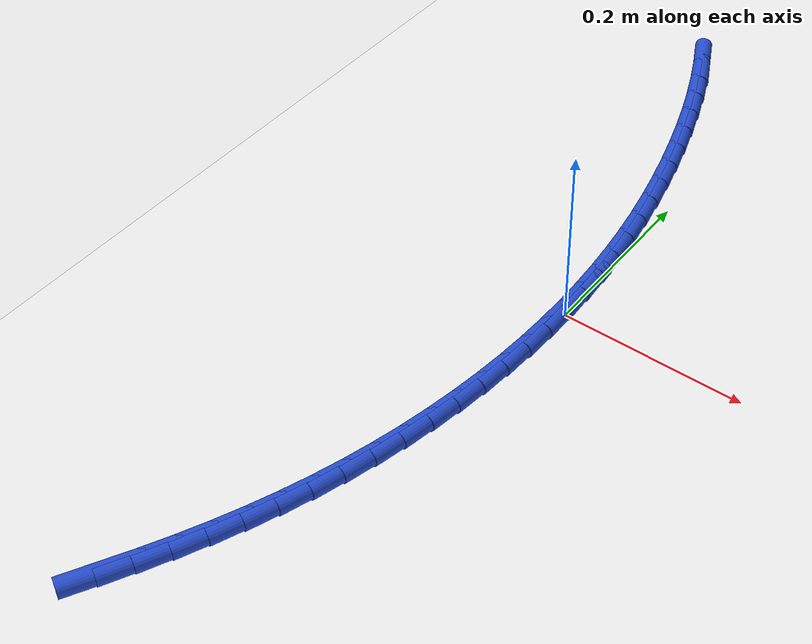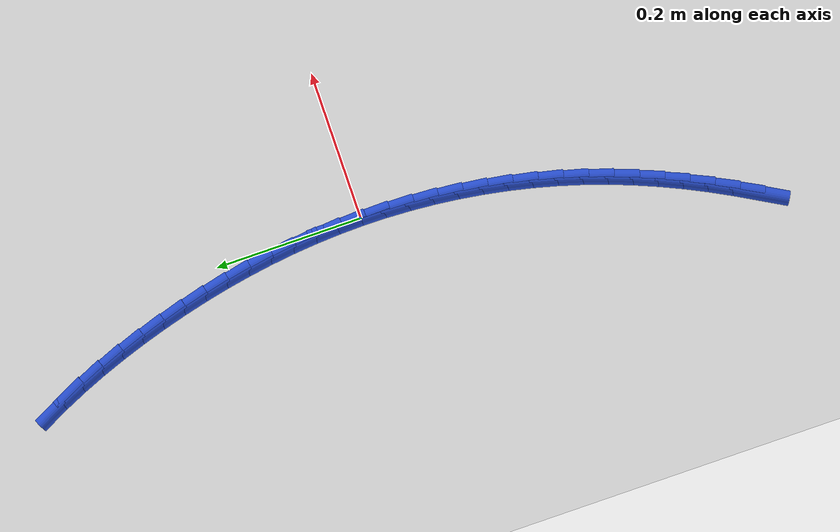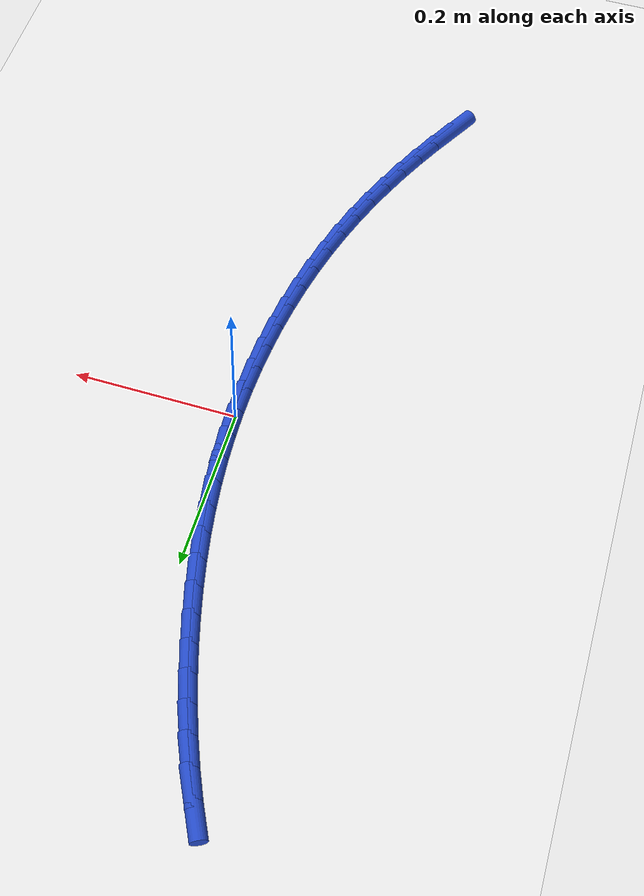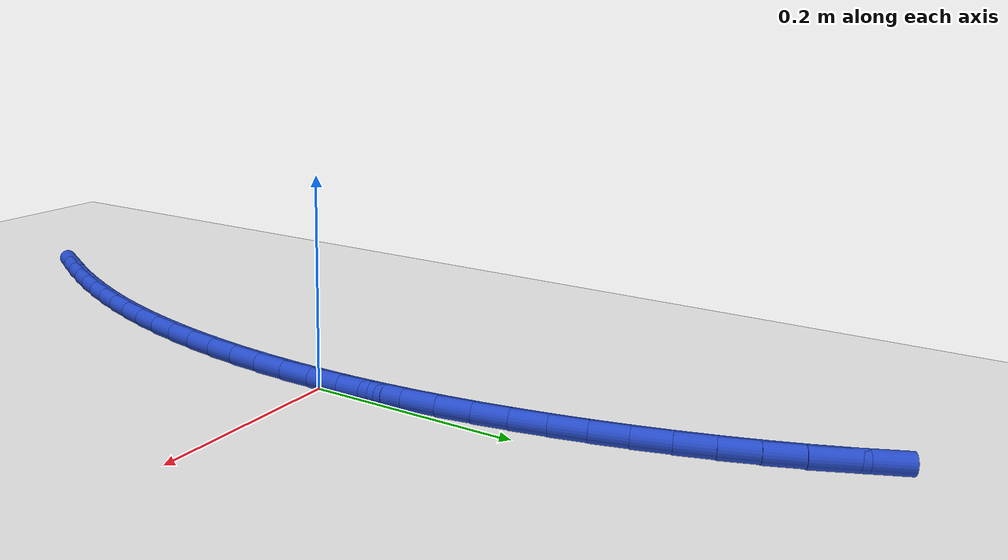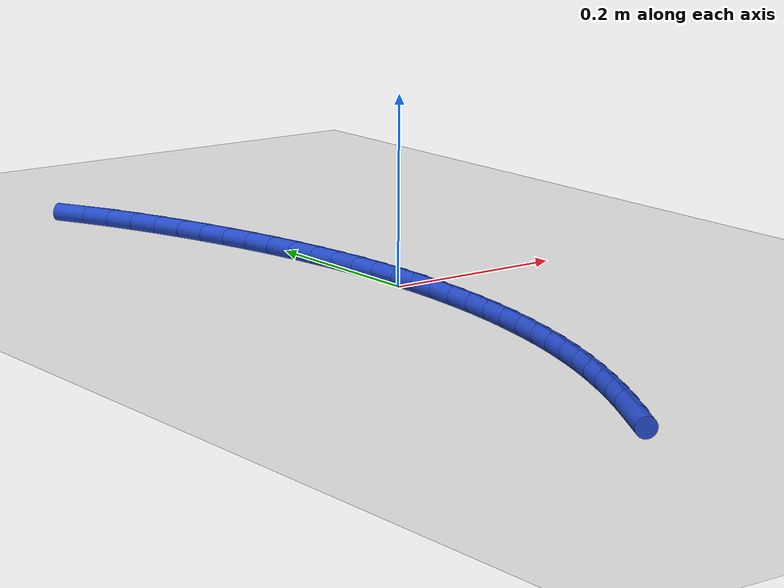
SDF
<sdf version="1.6">
 <world name="default">
  <model name="ground_plane">
   <static>1</static>
   <link name="link">
    <collision name="collision">
     <geometry><plane><normal>0 0 1</normal><size>100 100</size></plane></geometry>
     <surface><friction><ode><mu>100</mu><mu2>50</mu2></ode></friction></surface>
    </collision>
    <visual name="visual">
     <cast_shadows>0</cast_shadows>
     <geometry><plane><normal>0 0 1</normal><size>100 100</size></plane></geometry>
     <material>
      <script><uri>file://media/materials/scripts/gazebo.material</uri><name>Gazebo/WhiteGlow</name></script>
     </material>
    </visual>
   </link>
  </model>
  <model name="line">
   <link name="link_0">
    <pose>-9.540979117872439e-18 2.7755575615628914e-17 0.01 0 1.57 -1.5479299830757318</pose>
    <collision name="collision">
     <geometry><cylinder><radius>0.01</radius><length>0.08</length></cylinder></geometry>
    </collision>
    <visual name="visual">
     <material>
      <script><name>Gazebo/Blue</name><uri>file://media/materials/scripts/gazebo.material</uri></script>
     </material>
     <geometry><cylinder><radius>0.01</radius><length>0.08</length></cylinder></geometry>
    </visual>
   </link>
   <link name="link_1">
    <pose>-0.0007515272353551269 0.03286035828101572 0.01 0 1.57 -1.514508421640906</pose>
    <collision name="collision">
     <geometry><cylinder><radius>0.01</radius><length>0.08</length></cylinder></geometry>
    </collision>
    <visual name="visual">
     <material>
      <script><name>Gazebo/Blue</name><uri>file://media/materials/scripts/gazebo.material</uri></script>
     </material>
     <geometry><cylinder><radius>0.01</radius><length>0.08</length></cylinder></geometry>
    </visual>
   </link>
   <link name="link_2">
    <pose>-0.002598972968361298 0.06564705039313544 0.01 0 1.57 -1.4818363842122964</pose>
    <collision name="collision">
     <geometry><cylinder><radius>0.01</radius><length>0.08</length></cylinder></geometry>
    </collision>
    <visual name="visual">
     <material>
      <script><name>Gazebo/Blue</name><uri>file://media/materials/scripts/gazebo.material</uri></script>
     </material>
     <geometry><cylinder><radius>0.01</radius><length>0.08</length></cylinder></geometry>
    </visual>
   </link>
   <link name="link_3">
    <pose>-0.005516052719334551 0.09835143927020644 0.01 0 1.57 -1.4499525543551033</pose>
    <collision name="collision">
     <geometry><cylinder><radius>0.01</radius><length>0.08</length></cylinder></geometry>
    </collision>
    <visual name="visual">
     <material>
      <script><name>Gazebo/Blue</name><uri>file://media/materials/scripts/gazebo.material</uri></script>
     </material>
     <geometry><cylinder><radius>0.01</radius><length>0.08</length></cylinder></geometry>
    </visual>
   </link>
   <link name="link_4">
    <pose>-0.009476482008590892 0.13096488784607593 0.01 0 1.57 -1.4188873814097889</pose>
    <collision name="collision">
     <geometry><cylinder><radius>0.01</radius><length>0.08</length></cylinder></geometry>
    </collision>
    <visual name="visual">
     <material>
      <script><name>Gazebo/Blue</name><uri>file://media/materials/scripts/gazebo.material</uri></script>
     </material>
     <geometry><cylinder><radius>0.01</radius><length>0.08</length></cylinder></geometry>
    </visual>
   </link>
   <link name="link_5">
    <pose>-0.014453976356446343 0.1634787590545911 0.01 0 1.57 -1.3886634785120313</pose>
    <collision name="collision">
     <geometry><cylinder><radius>0.01</radius><length>0.08</length></cylinder></geometry>
    </collision>
    <visual name="visual">
     <material>
      <script><name>Gazebo/Blue</name><uri>file://media/materials/scripts/gazebo.material</uri></script>
     </material>
     <geometry><cylinder><radius>0.01</radius><length>0.08</length></cylinder></geometry>
    </visual>
   </link>
   <link name="link_6">
    <pose>-0.020422251283216918 0.19588441582959926 0.01 0 1.57 -1.3592961373803927</pose>
    <collision name="collision">
     <geometry><cylinder><radius>0.01</radius><length>0.08</length></cylinder></geometry>
    </collision>
    <visual name="visual">
     <material>
      <script><name>Gazebo/Blue</name><uri>file://media/materials/scripts/gazebo.material</uri></script>
     </material>
     <geometry><cylinder><radius>0.01</radius><length>0.08</length></cylinder></geometry>
    </visual>
   </link>
   <link name="link_7">
    <pose>-0.027355022309218647 0.22817322110494767 0.01 0 1.57 -1.3307939262878807</pose>
    <collision name="collision">
     <geometry><cylinder><radius>0.01</radius><length>0.08</length></cylinder></geometry>
    </collision>
    <visual name="visual">
     <material>
      <script><name>Gazebo/Blue</name><uri>file://media/materials/scripts/gazebo.material</uri></script>
     </material>
     <geometry><cylinder><radius>0.01</radius><length>0.08</length></cylinder></geometry>
    </visual>
   </link>
   <link name="link_8">
    <pose>-0.035226004954767534 0.2603365378144835 0.01 0 1.57 -1.3031593400854422</pose>
    <collision name="collision">
     <geometry><cylinder><radius>0.01</radius><length>0.08</length></cylinder></geometry>
    </collision>
    <visual name="visual">
     <material>
      <script><name>Gazebo/Blue</name><uri>file://media/materials/scripts/gazebo.material</uri></script>
     </material>
     <geometry><cylinder><radius>0.01</radius><length>0.08</length></cylinder></geometry>
    </visual>
   </link>
   <link name="link_9">
    <pose>-0.04400891474017961 0.292365728892054 0.01 0 1.57 -1.276328577495393</pose>
    <collision name="collision">
     <geometry><cylinder><radius>0.01</radius><length>0.08</length></cylinder></geometry>
    </collision>
    <visual name="visual">
     <material>
      <script><name>Gazebo/Blue</name><uri>file://media/materials/scripts/gazebo.material</uri></script>
     </material>
     <geometry><cylinder><radius>0.01</radius><length>0.08</length></cylinder></geometry>
    </visual>
   </link>
   <link name="link_10">
    <pose>-0.053679000038851725 0.3242502201008272 0.01 0 1.57 -1.2487136486865247</pose>
    <collision name="collision">
     <geometry><cylinder><radius>0.01</radius><length>0.08</length></cylinder></geometry>
    </collision>
    <visual name="visual">
     <material>
      <script><name>Gazebo/Blue</name><uri>file://media/materials/scripts/gazebo.material</uri></script>
     </material>
     <geometry><cylinder><radius>0.01</radius><length>0.08</length></cylinder></geometry>
    </visual>
   </link>
   <link name="link_11">
    <pose>-0.06425062145098712 0.35593000842314804 0.01 0 1.57 -1.2185306978952686</pose>
    <collision name="collision">
     <geometry><cylinder><radius>0.01</radius><length>0.08</length></cylinder></geometry>
    </collision>
    <visual name="visual">
     <material>
      <script><name>Gazebo/Blue</name><uri>file://media/materials/scripts/gazebo.material</uri></script>
     </material>
     <geometry><cylinder><radius>0.01</radius><length>0.08</length></cylinder></geometry>
    </visual>
   </link>
   <link name="link_12">
    <pose>-0.07577952248550499 0.3872927924453925 0.01 0 1.57 -1.1855185822800796</pose>
    <collision name="collision">
     <geometry><cylinder><radius>0.01</radius><length>0.08</length></cylinder></geometry>
    </collision>
    <visual name="visual">
     <material>
      <script><name>Gazebo/Blue</name><uri>file://media/materials/scripts/gazebo.material</uri></script>
     </material>
     <geometry><cylinder><radius>0.01</radius><length>0.08</length></cylinder></geometry>
    </visual>
   </link>
   <link name="link_13">
    <pose>-0.08832343409421409 0.418223759087202 0.01 0 1.57 -1.1494843146660079</pose>
    <collision name="collision">
     <geometry><cylinder><radius>0.01</radius><length>0.08</length></cylinder></geometry>
    </collision>
    <visual name="visual">
     <material>
      <script><name>Gazebo/Blue</name><uri>file://media/materials/scripts/gazebo.material</uri></script>
     </material>
     <geometry><cylinder><radius>0.01</radius><length>0.08</length></cylinder></geometry>
    </visual>
   </link>
   <link name="link_14">
    <pose>-0.10194008722892318 0.44860809526821804 0.01 0 1.57 -1.1102304231522242</pose>
    <collision name="collision">
     <geometry><cylinder><radius>0.01</radius><length>0.08</length></cylinder></geometry>
    </collision>
    <visual name="visual">
     <material>
      <script><name>Gazebo/Blue</name><uri>file://media/materials/scripts/gazebo.material</uri></script>
     </material>
     <geometry><cylinder><radius>0.01</radius><length>0.08</length></cylinder></geometry>
    </visual>
   </link>
   <link name="link_184">
    <pose>-0.1375970620425638 -0.5028680141007631 0.01 0 1.57 1.060198218952158</pose>
    <collision name="collision">
     <geometry><cylinder><radius>0.01</radius><length>0.08</length></cylinder></geometry>
    </collision>
    <visual name="visual">
     <material>
      <script><name>Gazebo/Blue</name><uri>file://media/materials/scripts/gazebo.material</uri></script>
     </material>
     <geometry><cylinder><radius>0.01</radius><length>0.08</length></cylinder></geometry>
    </visual>
   </link>
   <link name="link_185">
    <pose>-0.12148029340394882 -0.47409548024633374 0.01 0 1.57 1.0877176844474574</pose>
    <collision name="collision">
     <geometry><cylinder><radius>0.01</radius><length>0.08</length></cylinder></geometry>
    </collision>
    <visual name="visual">
     <material>
      <script><name>Gazebo/Blue</name><uri>file://media/materials/scripts/gazebo.material</uri></script>
     </material>
     <geometry><cylinder><radius>0.01</radius><length>0.08</length></cylinder></geometry>
    </visual>
   </link>
   <link name="link_186">
    <pose>-0.10616549805547586 -0.4448983143396094 0.01 0 1.57 1.1167582849762914</pose>
    <collision name="collision">
     <geometry><cylinder><radius>0.01</radius><length>0.08</length></cylinder></geometry>
    </collision>
    <visual name="visual">
     <material>
      <script><name>Gazebo/Blue</name><uri>file://media/materials/scripts/gazebo.material</uri></script>
     </material>
     <geometry><cylinder><radius>0.01</radius><length>0.08</length></cylinder></geometry>
    </visual>
   </link>
   <link name="link_187">
    <pose>-0.09171026081929443 -0.4152796646878833 0.01 0 1.57 1.147348668943443</pose>
    <collision name="collision">
     <geometry><cylinder><radius>0.01</radius><length>0.08</length></cylinder></geometry>
    </collision>
    <visual name="visual">
     <material>
      <script><name>Gazebo/Blue</name><uri>file://media/materials/scripts/gazebo.material</uri></script>
     </material>
     <geometry><cylinder><radius>0.01</radius><length>0.08</length></cylinder></geometry>
    </visual>
   </link>
   <link name="link_188">
    <pose>-0.07817216651755395 -0.3852426795984479 0.01 0 1.57 1.1795089579329305</pose>
    <collision name="collision">
     <geometry><cylinder><radius>0.01</radius><length>0.08</length></cylinder></geometry>
    </collision>
    <visual name="visual">
     <material>
      <script><name>Gazebo/Blue</name><uri>file://media/materials/scripts/gazebo.material</uri></script>
     </material>
     <geometry><cylinder><radius>0.01</radius><length>0.08</length></cylinder></geometry>
    </visual>
   </link>
   <link name="link_189">
    <pose>-0.06560879997240394 -0.354790507378596 0.01 0 1.57 1.2132483664719518</pose>
    <collision name="collision">
     <geometry><cylinder><radius>0.01</radius><length>0.08</length></cylinder></geometry>
    </collision>
    <visual name="visual">
     <material>
      <script><name>Gazebo/Blue</name><uri>file://media/materials/scripts/gazebo.material</uri></script>
     </material>
     <geometry><cylinder><radius>0.01</radius><length>0.08</length></cylinder></geometry>
    </visual>
   </link>
   <link name="link_190">
    <pose>-0.054077746005993896 -0.3239262963356203 0.01 0 1.57 1.248513264454032</pose>
    <collision name="collision">
     <geometry><cylinder><radius>0.01</radius><length>0.08</length></cylinder></geometry>
    </collision>
    <visual name="visual">
     <material>
      <script><name>Gazebo/Blue</name><uri>file://media/materials/scripts/gazebo.material</uri></script>
     </material>
     <geometry><cylinder><radius>0.01</radius><length>0.08</length></cylinder></geometry>
    </visual>
   </link>
   <link name="link_191">
    <pose>-0.04363523905445388 -0.2926542939732264 0.01 0 1.57 1.284272787778603</pose>
    <collision name="collision">
     <geometry><cylinder><radius>0.01</radius><length>0.08</length></cylinder></geometry>
    </collision>
    <visual name="visual">
     <material>
      <script><name>Gazebo/Blue</name><uri>file://media/materials/scripts/gazebo.material</uri></script>
     </material>
     <geometry><cylinder><radius>0.01</radius><length>0.08</length></cylinder></geometry>
    </visual>
   </link>
   <link name="link_192">
    <pose>-0.03430939556286938 -0.2610016354690535 0.01 0 1.57 1.3196037646270589</pose>
    <collision name="collision">
     <geometry><cylinder><radius>0.01</radius><length>0.08</length></cylinder></geometry>
    </collision>
    <visual name="visual">
     <material>
      <script><name>Gazebo/Blue</name><uri>file://media/materials/scripts/gazebo.material</uri></script>
     </material>
     <geometry><cylinder><radius>0.01</radius><length>0.08</length></cylinder></geometry>
    </visual>
   </link>
   <link name="link_193">
    <pose>-0.02610175682060977 -0.2290170878270575 0.01 0 1.57 1.354534749819456</pose>
    <collision name="collision">
     <geometry><cylinder><radius>0.01</radius><length>0.08</length></cylinder></geometry>
    </collision>
    <visual name="visual">
     <material>
      <script><name>Gazebo/Blue</name><uri>file://media/materials/scripts/gazebo.material</uri></script>
     </material>
     <geometry><cylinder><radius>0.01</radius><length>0.08</length></cylinder></geometry>
    </visual>
   </link>
   <link name="link_194">
    <pose>-0.01901282260617653 -0.19675026582730998 0.01 0 1.57 1.3891344781628134</pose>
    <collision name="collision">
     <geometry><cylinder><radius>0.01</radius><length>0.08</length></cylinder></geometry>
    </collision>
    <visual name="visual">
     <material>
      <script><name>Gazebo/Blue</name><uri>file://media/materials/scripts/gazebo.material</uri></script>
     </material>
     <geometry><cylinder><radius>0.01</radius><length>0.08</length></cylinder></geometry>
    </visual>
   </link>
   <link name="link_195">
    <pose>-0.01304309269807088 -0.16425078424988157 0.01 0 1.57 1.4234733663967065</pose>
    <collision name="collision">
     <geometry><cylinder><radius>0.01</radius><length>0.08</length></cylinder></geometry>
    </collision>
    <visual name="visual">
     <material>
      <script><name>Gazebo/Blue</name><uri>file://media/materials/scripts/gazebo.material</uri></script>
     </material>
     <geometry><cylinder><radius>0.01</radius><length>0.08</length></cylinder></geometry>
    </visual>
   </link>
   <link name="link_196">
    <pose>-0.00819306687479407 -0.13156825787484294 0.01 0 1.57 1.4576232028855942</pose>
    <collision name="collision">
     <geometry><cylinder><radius>0.01</radius><length>0.08</length></cylinder></geometry>
    </collision>
    <visual name="visual">
     <material>
      <script><name>Gazebo/Blue</name><uri>file://media/materials/scripts/gazebo.material</uri></script>
     </material>
     <geometry><cylinder><radius>0.01</radius><length>0.08</length></cylinder></geometry>
    </visual>
   </link>
   <link name="link_197">
    <pose>-0.004463244914847337 -0.0987523014822648 0.01 0 1.57 1.4916569011472205</pose>
    <collision name="collision">
     <geometry><cylinder><radius>0.01</radius><length>0.08</length></cylinder></geometry>
    </collision>
    <visual name="visual">
     <material>
      <script><name>Gazebo/Blue</name><uri>file://media/materials/scripts/gazebo.material</uri></script>
     </material>
     <geometry><cylinder><radius>0.01</radius><length>0.08</length></cylinder></geometry>
    </visual>
   </link>
   <link name="link_198">
    <pose>-0.0018541265967319202 -0.06585252985221779 0.01 0 1.57 1.525648301663227</pose>
    <collision name="collision">
     <geometry><cylinder><radius>0.01</radius><length>0.08</length></cylinder></geometry>
    </collision>
    <visual name="visual">
     <material>
      <script><name>Gazebo/Blue</name><uri>file://media/materials/scripts/gazebo.material</uri></script>
     </material>
     <geometry><cylinder><radius>0.01</radius><length>0.08</length></cylinder></geometry>
    </visual>
   </link>
   <link name="link_199">
    <pose>-0.0003662116989490635 -0.03291855776477264 0.01 0 1.57 1.5596720061261027</pose>
    <collision name="collision">
     <geometry><cylinder><radius>0.01</radius><length>0.08</length></cylinder></geometry>
    </collision>
    <visual name="visual">
     <material>
      <script><name>Gazebo/Blue</name><uri>file://media/materials/scripts/gazebo.material</uri></script>
     </material>
     <geometry><cylinder><radius>0.01</radius><length>0.08</length></cylinder></geometry>
    </visual>
   </link>
   <link name="link_200">
    <pose>-1.0408340855860843e-17 -2.0816681711721685e-17 0.01 0 1.57 -1.5477894256189866</pose>
    <collision name="collision">
     <geometry><cylinder><radius>0.01</radius><length>0.08</length></cylinder></geometry>
    </collision>
    <visual name="visual">
     <material>
      <script><name>Gazebo/Blue</name><uri>file://media/materials/scripts/gazebo.material</uri></script>
     </material>
     <geometry><cylinder><radius>0.01</radius><length>0.08</length></cylinder></geometry>
    </visual>
   </link>
   <link name="link_201">
    <pose>-0.0007559912783860244 0.032853528662030104 0.01 0 1.57 -1.5477894256189864</pose>
    <collision name="collision">
     <geometry><cylinder><radius>0.01</radius><length>0.08</length></cylinder></geometry>
    </collision>
    <visual name="visual">
     <material>
      <script><name>Gazebo/Blue</name><uri>file://media/materials/scripts/gazebo.material</uri></script>
     </material>
     <geometry><cylinder><radius>0.01</radius><length>0.08</length></cylinder></geometry>
    </visual>
   </link>
  </model>
 </world>
</sdf>
